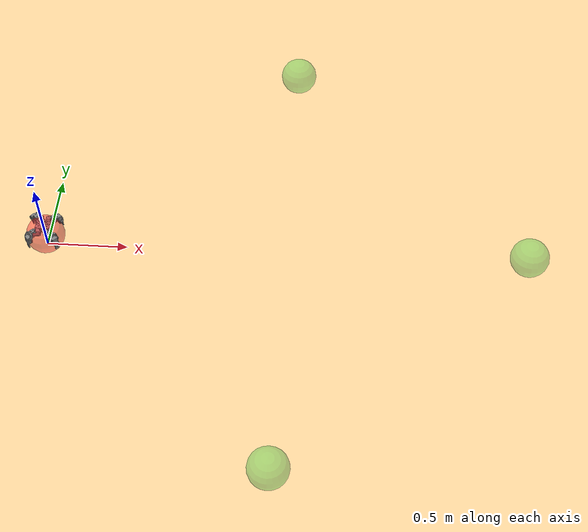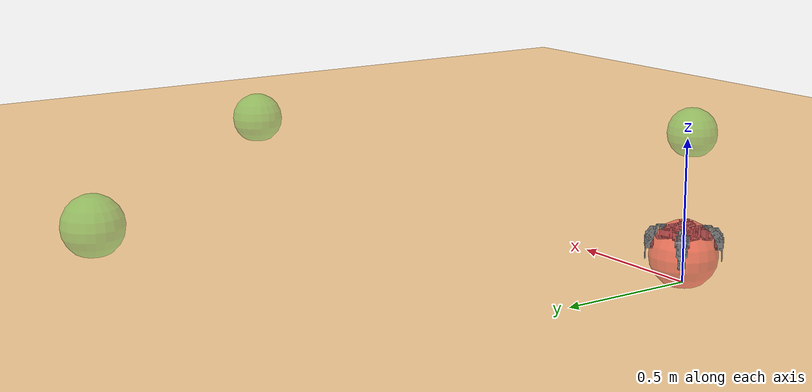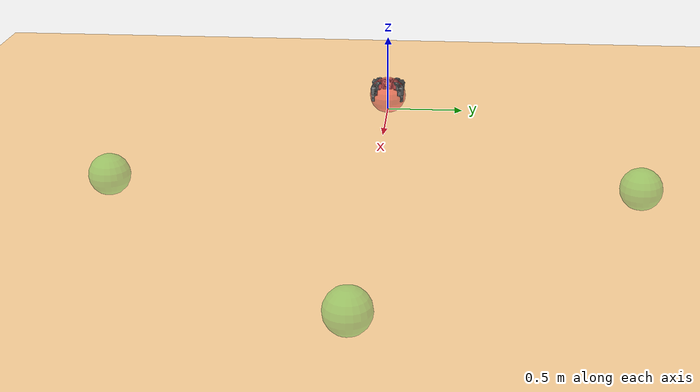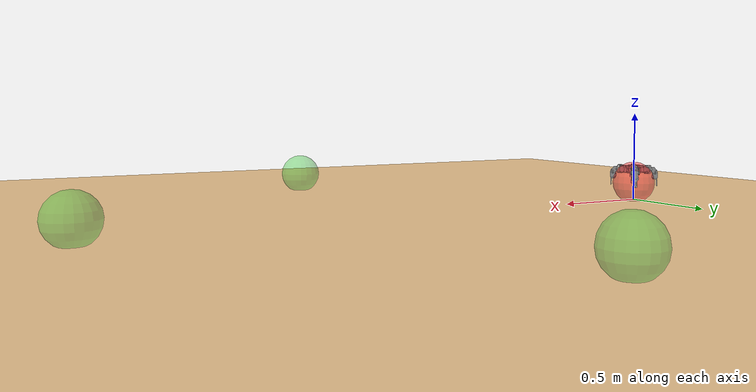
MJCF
<mujoco model="Bioloid_Quadruped_Model">
    <compiler angle="radian" />
    <option timestep="0.004166666666666667" iterations="50" tolerance="1e-10" />

    <asset>
        <mesh name="base_link" file="meshes/base_link.stl" scale="0.001 0.001 0.001" />
        <mesh name="FR_Hip" file="meshes/FR_Hip.stl" scale="0.001 0.001 0.001" />
        <mesh name="FL_Hip" file="meshes/FL_Hip.stl" scale="0.001 0.001 0.001" />
        <mesh name="BR_Hip" file="meshes/BR_Hip.stl" scale="0.001 0.001 0.001" />
        <mesh name="BL_Hip" file="meshes/BL_Hip.stl" scale="0.001 0.001 0.001" />
        <mesh name="FR_Leg" file="meshes/FR_Leg.stl" scale="0.001 0.001 0.001" />
        <mesh name="FL_Leg" file="meshes/FL_Leg.stl" scale="0.001 0.001 0.001" />
        <mesh name="BR_Leg" file="meshes/BR_Leg.stl" scale="0.001 0.001 0.001" />
        <mesh name="BL_Leg" file="meshes/BL_Leg.stl" scale="0.001 0.001 0.001" />
    </asset>

    <worldbody>
        <light directional="true" pos="-0.5 0.5 3" dir="0 0 -1" />
        <geom name="floor" pos="0 0 0" size="10 10 0.1" type="plane" rgba="1 0.83 0.61 0.5" friction="0.5 0.005 0.0001" />

        <body name="base_link" pos="0.0 0.0 0.2" euler="0.0 0.0 0.0">
            <freejoint name="root_joint"/>
            <geom name="base_link_geom" type="mesh" mesh="base_link" />
            <inertial mass="0.394557" pos="0 -0.0006 -0.021" fullinertia="0.0008 0.0004 0.0011 0 0 0" />

            <body name="FR_Hip" pos="0.0465 -0.052 -0.001" euler="0 0 3.14159">
                <joint name="base_link_FR_Hip_Joint" type="hinge" axis="0 0 -1" range="-1.570796 0.872665" limited="true" damping="0.05" armature="0.005" />
                <geom name="FR_Hip_geom" type="mesh" mesh="FR_Hip" />
                <inertial mass="0.0425" pos="-0.018 0.018 -0.022" fullinertia="1.8e-05 1.8e-05 1.8e-05 0 0 0" />
                <body name="FR_Leg" pos="-0.049 0.019 -0.035" euler="1.57 -0.785 -1.57">
                    <joint name="FR_Hip_FR_Leg_Joint" type="hinge" axis="0 0 -1" range="0.0 1.570796" limited="true" damping="0.05" armature="0.005" />
                    <geom name="FR_Leg_geom" type="mesh" mesh="FR_Leg" />
                    <inertial mass="0.072" pos="0.021 0.0 0.0" fullinertia="1.2e-05 3.9e-05 3.6e-05 0 0 0" />
                </body>
            </body>

            <body name="FL_Hip" pos="0.0465 0.052 -0.001" euler="0 0 -3.08">
                <joint name="base_link_FL_Hip_Joint" type="hinge" axis="0 0 -1" range="-0.872665 1.570796" limited="true" damping="0.05" armature="0.005" />
                <geom name="FL_Hip_geom" type="mesh" mesh="FL_Hip" />
                <inertial mass="0.0425" pos="-0.018 -0.018 -0.022" fullinertia="1.8e-05 1.8e-05 1.8e-05 0 0 0" />
                <body name="FL_Leg" pos="-0.049 -0.019 -0.035" euler="-1.57 -0.785 1.57">
                    <joint name="FL_Hip_FL_Leg_Joint" type="hinge" axis="0 0 -1" range="-1.570796 0.0" limited="true" damping="0.05" armature="0.005" />
                    <geom name="FL_Leg_geom" type="mesh" mesh="FL_Leg" />
                    <inertial mass="0.072" pos="0.021 0.0 0.0" fullinertia="1.2e-05 3.9e-05 3.6e-05 0 0 0" />
                </body>
            </body>

            <body name="BR_Hip" pos="-0.0465 -0.052 -0.001" euler="0 0 0">
                <joint name="base_link_BR_Hip_Joint" type="hinge" axis="0 0 -1" range="-0.872665 1.570796" limited="true" damping="0.05" armature="0.005" />
                <geom name="BR_Hip_geom" type="mesh" mesh="BR_Hip" />
                <inertial mass="0.0425" pos="-0.018 -0.018 -0.022" fullinertia="1.8e-05 1.8e-05 1.8e-05 0 0 0" />
                <body name="BR_Leg" pos="-0.049 -0.019 -0.035" euler="-1.57 -0.785 1.57">
                    <joint name="BR_Hip_BR_Leg_Joint" type="hinge" axis="0 0 -1" range="-1.570796 0.0" limited="true" damping="0.05" armature="0.005" />
                    <geom name="BR_Leg_geom" type="mesh" mesh="BR_Leg" />
                    <inertial mass="0.072" pos="0.021 0.0 0.0" fullinertia="1.2e-05 3.9e-05 3.6e-05 0 0 0" />
                </body>
            </body>

            <body name="BL_Hip" pos="-0.0465 0.052 -0.001" euler="0 0 0">
                <joint name="base_link_BL_Hip_Joint" type="hinge" axis="0 0 -1" range="-1.570796 0.872665" limited="true" damping="0.05" armature="0.005" />
                <geom name="BL_Hip_geom" type="mesh" mesh="BL_Hip" />
                <inertial mass="0.0425" pos="-0.018 0.018 -0.022" fullinertia="1.8e-05 1.8e-05 1.8e-05 0 0 0" />
                <body name="BL_Leg" pos="-0.019 0.049 -0.035" euler="-1.57 0.785 1.57">
                    <joint name="BL_Hip_BL_Leg_Joint" type="hinge" axis="0 0 -1" range="-1.570796 0.0" limited="true" damping="0.05" armature="0.005" />
                    <geom name="BL_Leg_geom" type="mesh" mesh="BL_Leg" />
                    <inertial mass="0.072" pos="0.021 0.0 0.0" fullinertia="1.2e-05 3.9e-05 3.6e-05 0 0 0" />
                </body>
            </body>
        </body>
    <body name="marker_0" pos="1.5 1.5 0.1" mocap="true">
  <geom type="sphere" size="0.12" rgba="0.2 0.8 0.2 0.4" contype="0" conaffinity="0"/>
</body>
<body name="marker_1" pos="3.0 0.0 0.1" mocap="true">
  <geom type="sphere" size="0.12" rgba="0.2 0.8 0.2 0.4" contype="0" conaffinity="0"/>
</body>
<body name="marker_2" pos="1.5 -1.5 0.1" mocap="true">
  <geom type="sphere" size="0.12" rgba="0.2 0.8 0.2 0.4" contype="0" conaffinity="0"/>
</body>
<body name="marker_3" pos="0.0 0.0 0.1" mocap="true">
  <geom type="sphere" size="0.12" rgba="1.0 0.2 0.2 0.5" contype="0" conaffinity="0"/>
</body>
</worldbody>

    <contact>
        <!-- Disables all self-collisions between the specified bodies -->
        <exclude body1="base_link" body2="FR_Hip"/>
        <exclude body1="base_link" body2="FL_Hip"/>
        <exclude body1="base_link" body2="BR_Hip"/>
        <exclude body1="base_link" body2="BL_Hip"/>
        <exclude body1="FR_Hip" body2="FR_Leg"/>
        <exclude body1="FL_Hip" body2="FL_Leg"/>
        <exclude body1="BR_Hip" body2="BR_Leg"/>
        <exclude body1="BL_Hip" body2="BL_Leg"/>
    </contact>

    <actuator>
        <motor name="fr_hip" joint="base_link_FR_Hip_Joint" gear="2.5"/>
        <motor name="fl_hip" joint="base_link_FL_Hip_Joint" gear="2.5"/>
        <motor name="br_hip" joint="base_link_BR_Hip_Joint" gear="2.5"/>
        <motor name="bl_hip" joint="base_link_BL_Hip_Joint" gear="2.5"/>
        <motor name="fr_leg" joint="FR_Hip_FR_Leg_Joint" gear="2.5"/>
        <motor name="fl_leg" joint="FL_Hip_FL_Leg_Joint" gear="2.5"/>
        <motor name="br_leg" joint="BR_Hip_BR_Leg_Joint" gear="2.5"/>
        <motor name="bl_leg" joint="BL_Hip_BL_Leg_Joint" gear="2.5"/>
    </actuator>
</mujoco>
